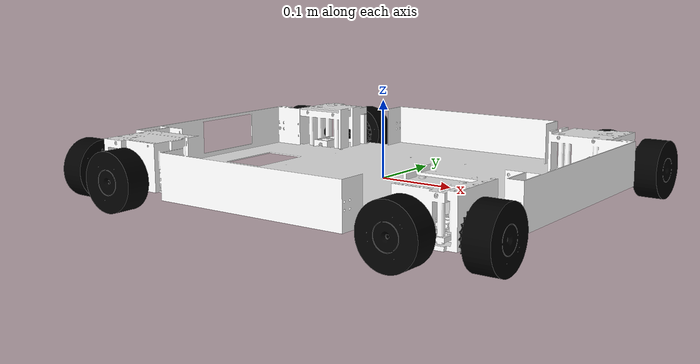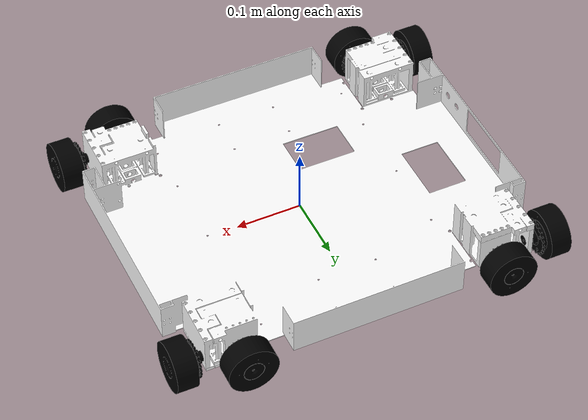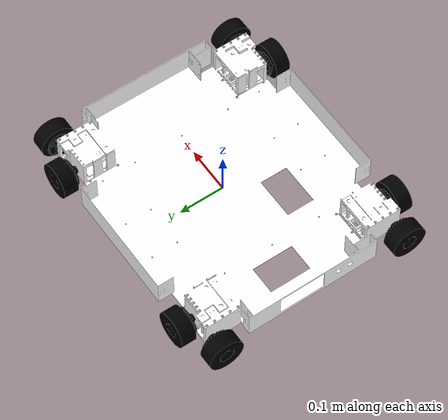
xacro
<?xml version="1.0" ?>
<robot name="ros_shuttle" xmlns:xacro="http://www.ros.org/wiki/xacro">

  <link name="base_link">
    <inertial>
      <origin xyz="-0.00551645829194561 -0.00526871151779984 0.0285459170341109" rpy="0 0 0" />
      <mass value="0.51832860194513" />
      <inertia ixx="0.00024965821249225" ixy="3.9756598630108E-06" ixz="1.42929438098982E-08" iyy="0.000240457817790144" iyz="1.48938078333273E-07" izz="0.00035806272475655" />
    </inertial>
    <visual>
      <origin xyz="0 0 0" rpy="0 0 0" />
      <geometry>
        <mesh filename="package://my_robot_description/meshes/base_link.STL" />
      </geometry>
      <material name="white">
        <color rgba="1 1 1 1" />
      </material>
    </visual>
    <collision>
      <origin xyz="0 0 0" rpy="0 0 0" />
      <geometry>
        <mesh filename="package://my_robot_description/meshes/base_link.STL" />
      </geometry>
    </collision>
  </link>

  <gazebo reference="base_link">
    <material>Gazebo/White</material>
  </gazebo>

  <link name="wheel_x1">
    <inertial>
      <origin xyz="-3.23597054152636E-08 -1.73261524016866E-08 -0.00874897392031299" rpy="0 0 0" />
      <mass value="0.145682689167449" />
      <inertia ixx="6.14764866997196E-05" ixy="0" ixz="0" iyy="6.14765754011661E-05" iyz="0" izz="0.000100247382097959" />
    </inertial>
    <visual>
      <geometry><mesh filename="package://my_robot_description/meshes/wheel_x1.STL" /></geometry>
      <material name="black"><color rgba="0 0 0 1" /></material>
    </visual>
    <collision>
      <geometry><mesh filename="package://my_robot_description/meshes/wheel_x1.STL" /></geometry>
    </collision>
  </link>
  <joint name="wheel_x1_joint" type="continuous">
    <origin xyz="0.19209 0.25319 0.010055" rpy="1.5708 0 -3.1416" />
    <parent link="base_link" />
    <child link="wheel_x1" />
    <axis xyz="0 0 1" />
  </joint>

  <link name="wheel_x2">
    <inertial>
      <origin xyz="1.35244830499689E-08 -3.41555179139696E-08 -0.00874897392029084" rpy="0 0 0" />
      <mass value="0.14568268916745" />
      <inertia ixx="6.14765911175573E-05" ixy="0" ixz="0" iyy="6.14764709833191E-05" iyz="0" izz="0.00010024738209795" />
    </inertial>
    <visual>
      <geometry><mesh filename="package://my_robot_description/meshes/wheel_x2.STL" /></geometry>
      <material name="black"><color rgba="0 0 0 1" /></material>
    </visual>
    <collision>
      <geometry><mesh filename="package://my_robot_description/meshes/wheel_x2.STL" /></geometry>
    </collision>
  </link>
  <joint name="wheel_x2_joint" type="continuous">
    <origin xyz="-0.20861 0.25319 0.010751" rpy="1.5708 0 -3.1416" />
    <parent link="base_link" />
    <child link="wheel_x2" />
    <axis xyz="0 0 1" />
  </joint>

  <link name="wheel_x3">
    <inertial>
      <origin xyz="-3.6307554620793E-08 5.26337012862754E-09 -0.00874897392029572" rpy="0 0 0" />
      <mass value="0.14568268916745" />
      <inertia ixx="6.14764469202833E-05" ixy="0" ixz="0" iyy="6.14766151805928E-05" iyz="0" izz="0.00010024738209795" />
    </inertial>
    <visual>
      <geometry><mesh filename="package://my_robot_description/meshes/wheel_x3.STL" /></geometry>
      <material name="black"><color rgba="0 0 0 1" /></material>
    </visual>
    <collision>
      <geometry><mesh filename="package://my_robot_description/meshes/wheel_x3.STL" /></geometry>
    </collision>
  </link>
  <joint name="wheel_x3_joint" type="continuous">
    <origin xyz="-0.208979635066533 -0.259961604462728 0.0143112535293748" rpy="1.5707963267949 0 0" />
    <parent link="base_link" />
    <child link="wheel_x3" />
    <axis xyz="0 0 -1" />
  </joint>

  <link name="wheel_x4">
    <inertial>
      <origin xyz="-3.65470383956179E-08 -3.72243552648754E-09 -0.00874897392030649" rpy="0 0 0" />
      <mass value="0.14568268916745" />
      <inertia ixx="6.14764473265252E-05" ixy="0" ixz="0" iyy="6.14766147743595E-05" iyz="0" izz="0.000100247382097958" />
    </inertial>
    <visual>
      <geometry><mesh filename="package://my_robot_description/meshes/wheel_x4.STL" /></geometry>
      <material name="black"><color rgba="0 0 0 1" /></material>
    </visual>
    <collision>
      <geometry><mesh filename="package://my_robot_description/meshes/wheel_x4.STL" /></geometry>
    </collision>
  </link>
  <joint name="wheel_x4_joint" type="continuous">
    <origin xyz="0.192090468780543 -0.259850537618105 0.00968898363599036" rpy="1.5707963267949 0 0" />
    <parent link="base_link" />
    <child link="wheel_x4" />
    <axis xyz="0 0 -1" />
  </joint>

  <link name="wheel_y1">
    <inertial>
      <origin xyz="-3.67105643384047E-08 -4.20734058703687E-10 -0.00874897391985102" rpy="0 0 0" />
      <mass value="0.145682689167449" />
      <inertia ixx="6.14764447590748E-05" ixy="0" ixz="0" iyy="6.14766173417653E-05" iyz="0" izz="0.000100247382097953" />
    </inertial>
    <visual>
      <geometry><mesh filename="package://my_robot_description/meshes/wheel_y1.STL" /></geometry>
      <material name="black"><color rgba="0 0 0 1" /></material>
    </visual>
    <collision>
      <geometry><mesh filename="package://my_robot_description/meshes/wheel_y1.STL" /></geometry>
    </collision>
  </link>
  <joint name="wheel_y1_joint" type="continuous">
    <origin xyz="0.286336801450734 0.206862497258585 0.0110426040425946" rpy="1.5707963267949 0 1.55973065978089" />
    <parent link="base_link" />
    <child link="wheel_y1" />
    <axis xyz="0 0 -1" />
  </joint>

  <link name="wheel_y2">
    <inertial>
      <origin xyz="2.52343341222705E-08 -2.66526073433582E-08 -0.00874897392033247" rpy="0 0 0" />
      <mass value="0.145682689167449" />
      <inertia ixx="6.1476531215261E-05" ixy="0" ixz="0" iyy="6.14765308856174E-05" iyz="0" izz="0.000100247382097952" />
    </inertial>
    <visual>
      <geometry><mesh filename="package://my_robot_description/meshes/wheel_y2.STL" /></geometry>
      <material name="black"><color rgba="0 0 0 1" /></material>
    </visual>
    <collision>
      <geometry><mesh filename="package://my_robot_description/meshes/wheel_y2.STL" /></geometry>
    </collision>
  </link>
  <joint name="wheel_y2_joint" type="continuous">
    <origin xyz="-0.30223 0.20756 0.010411" rpy="1.5708 0 -1.5708" />
    <parent link="base_link" />
    <child link="wheel_y2" />
    <axis xyz="0 0 1" />
  </joint>

  <link name="wheel_y3">
    <inertial>
      <origin xyz="-3.61390528613725E-08 6.32197527661305E-09 -0.00874897392028827" rpy="0 0 0" />
      <mass value="0.14568268916745" />
      <inertia ixx="6.14764482592896E-05" ixy="0" ixz="0" iyy="6.14766138415908E-05" iyz="0" izz="0.000100247382097954" />
    </inertial>
    <visual>
      <geometry><mesh filename="package://my_robot_description/meshes/wheel_y3.STL" /></geometry>
      <material name="black"><color rgba="0 0 0 1" /></material>
    </visual>
    <collision>
      <geometry><mesh filename="package://my_robot_description/meshes/wheel_y3.STL" /></geometry>
    </collision>
  </link>
  <joint name="wheel_y3_joint" type="continuous">
    <origin xyz="-0.301604635066533 -0.214336604462728 0.0143112535293748" rpy="1.5707963267949 0 -1.5707963267949" />
    <parent link="base_link" />
    <child link="wheel_y3" />
    <axis xyz="0 0 1" />
  </joint>

  <link name="wheel_y4">
    <inertial>
      <origin xyz="-3.54429363635944E-08 -9.72513708452638E-09 -0.00874897392031282" rpy="0 0 0" />
      <mass value="0.14568268916745" />
      <inertia ixx="6.1476458966682E-05" ixy="0" ixz="0" iyy="6.14766031342023E-05" iyz="0" izz="0.000100247382097958" />
    </inertial>
    <visual>
      <geometry><mesh filename="package://my_robot_description/meshes/wheel_y4.STL" /></geometry>
      <material name="black"><color rgba="0 0 0 1" /></material>
    </visual>
    <collision>
      <geometry><mesh filename="package://my_robot_description/meshes/wheel_y4.STL" /></geometry>
    </collision>
  </link>
  <joint name="wheel_y4_joint" type="continuous">
    <origin xyz="0.287645364932471 -0.214336604463216 0.0112942202850847" rpy="1.5707963267949 0 1.5707963267949" />
    <parent link="base_link" />
    <child link="wheel_y4" />
    <axis xyz="0 0 -1" />
  </joint>

  <!-- X-axis wheels -->
  <gazebo reference="wheel_x1">
    <material>Gazebo/Black</material>
    <mu1>1.0</mu1>
    <mu2>0.01</mu2>
    <kp>1000000.0</kp>
    <kd>1.0</kd>
  </gazebo>
  <gazebo reference="wheel_x2">
    <material>Gazebo/Black</material>
    <mu1>1.0</mu1>
    <mu2>0.01</mu2>
    <kp>1000000.0</kp>
    <kd>1.0</kd>
  </gazebo>
  <gazebo reference="wheel_x3">
    <material>Gazebo/Black</material>
    <mu1>1.0</mu1>
    <mu2>0.01</mu2>
    <kp>1000000.0</kp>
    <kd>1.0</kd>
  </gazebo>
  <gazebo reference="wheel_x4">
    <material>Gazebo/Black</material>
    <mu1>1.0</mu1>
    <mu2>0.01</mu2>
    <kp>1000000.0</kp>
    <kd>1.0</kd>
  </gazebo>
  <!-- Y-axis wheels -->
  <gazebo reference="wheel_y1">
    <material>Gazebo/Black</material>
    <mu1>0.01</mu1>
    <mu2>1.0</mu2>
    <kp>1000000.0</kp>
    <kd>1.0</kd>
  </gazebo>
  <gazebo reference="wheel_y2">
    <material>Gazebo/Black</material>
    <mu1>0.01</mu1>
    <mu2>1.0</mu2>
    <kp>1000000.0</kp>
    <kd>1.0</kd>
  </gazebo>
  <gazebo reference="wheel_y3">
    <material>Gazebo/Black</material>
    <mu1>0.01</mu1>
    <mu2>1.0</mu2>
    <kp>1000000.0</kp>
    <kd>1.0</kd>
  </gazebo>
  <gazebo reference="wheel_y4">
    <material>Gazebo/Black</material>
    <mu1>0.01</mu1>
    <mu2>1.0</mu2>
    <kp>1000000.0</kp>
    <kd>1.0</kd>
  </gazebo>

  <ros2_control name="GazeboSystem" type="system">
    <hardware>
      <plugin>gz_ros2_control/GazeboSimSystem</plugin>
    </hardware>
    <joint name="wheel_x1_joint">
      <command_interface name="velocity"/>
      <state_interface name="position"/>
      <state_interface name="velocity"/>
    </joint>
    <joint name="wheel_x2_joint">
      <command_interface name="velocity"/>
      <state_interface name="position"/>
      <state_interface name="velocity"/>
    </joint>
    <joint name="wheel_x3_joint">
      <command_interface name="velocity"/>
      <state_interface name="position"/>
      <state_interface name="velocity"/>
    </joint>
    <joint name="wheel_x4_joint">
      <command_interface name="velocity"/>
      <state_interface name="position"/>
      <state_interface name="velocity"/>
    </joint>
    <joint name="wheel_y1_joint">
      <command_interface name="velocity"/>
      <state_interface name="position"/>
      <state_interface name="velocity"/>
    </joint>
    <joint name="wheel_y2_joint">
      <command_interface name="velocity"/>
      <state_interface name="position"/>
      <state_interface name="velocity"/>
    </joint>
    <joint name="wheel_y3_joint">
      <command_interface name="velocity"/>
      <state_interface name="position"/>
      <state_interface name="velocity"/>
    </joint>
    <joint name="wheel_y4_joint">
      <command_interface name="velocity"/>
      <state_interface name="position"/>
      <state_interface name="velocity"/>
    </joint>
  </ros2_control>

  <gazebo>
    <plugin filename="gz_ros2_control-system" name="gz_ros2_control::GazeboSimROS2ControlPlugin">
      <parameters>/tmp/my_controllers.yaml</parameters>
      <verbose>true</verbose>
    </plugin>
  </gazebo>
</robot>
